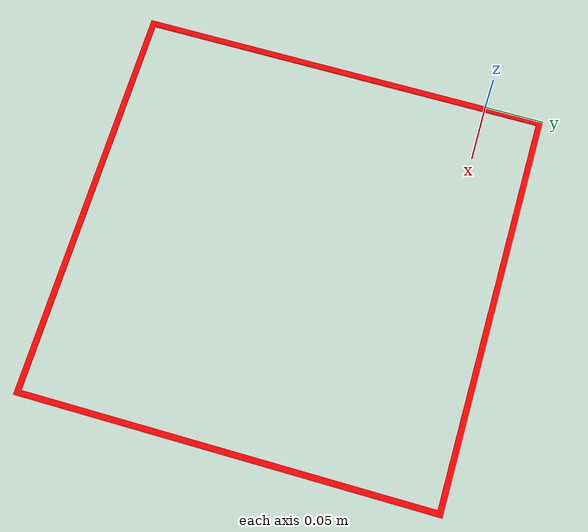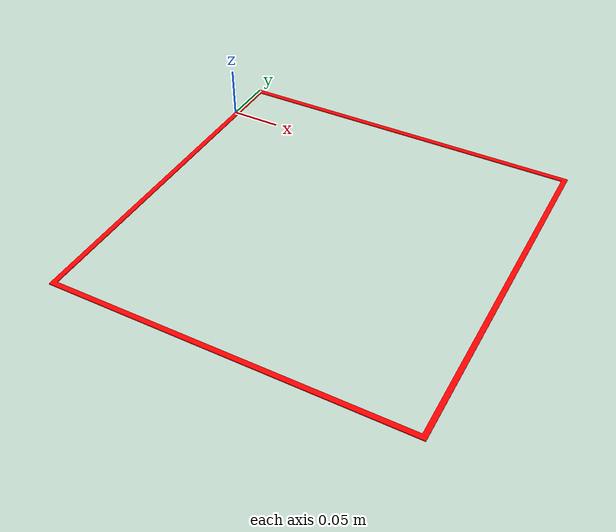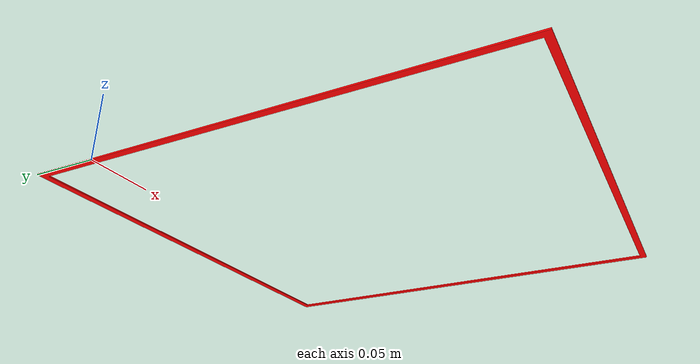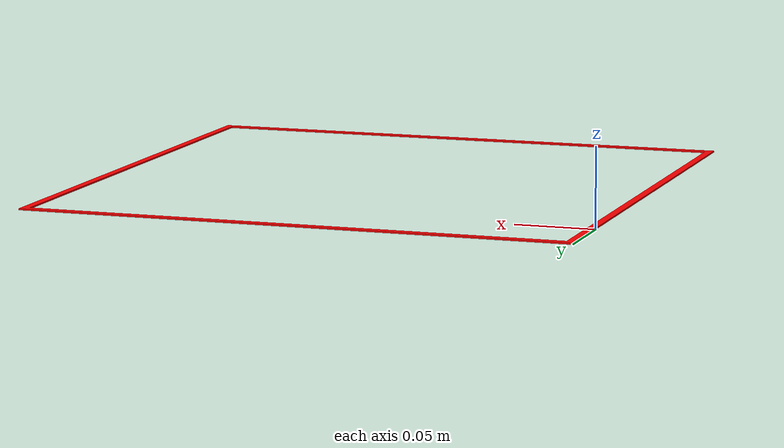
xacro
<?xml version="1.0"?>
<robot name="tornillos_limit">
     <link name="tornillos">
        <inertial>
          <origin xyz="0 0 0" />
          <mass value="0.001" />
          <inertia  ixx="0.000001" ixy="0.0"  ixz="0.0"  iyy="0.000001"  iyz="0.0"  izz="0.000001" />
        </inertial>
        <collision>
        <origin rpy="0.0 0.0 0.0" xyz="0.0 0.0 0.0" />
        <geometry>
          <mesh filename="package://proyecto_intermedio_robotica/meshes/zona_tuercas.stl" scale="1.0 1.0 1.0"/>
        </geometry>
      </collision>
      <visual>
        <origin rpy="0.0 0.0 0.0" xyz="0.0 0.0 0.0" />
        <geometry>
          <mesh filename="package://proyecto_intermedio_robotica/meshes/zona_tuercas.stl" scale="1.0 1.0 1.0"/>
        </geometry>
        <material name="red">
          <color rgba="1.0 0.0 0.0 1.0"/>
        </material>
      </visual>
     </link>
     <gazebo reference="tornillos">
       <turnGravityOff>true</turnGravityOff>
       <material>Gazebo/BlueTransparent</material>
     </gazebo>
</robot>
